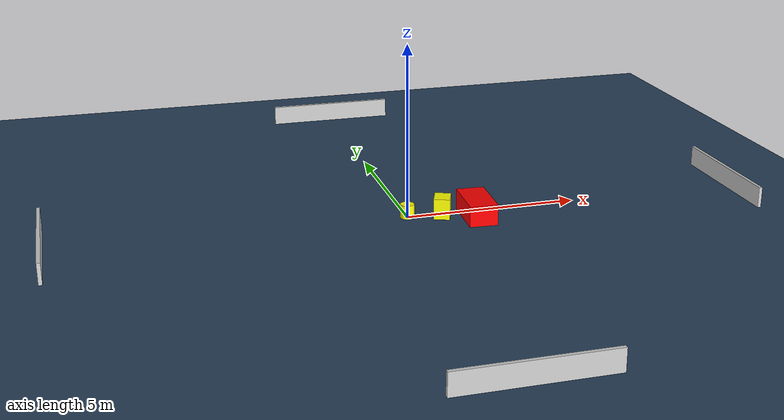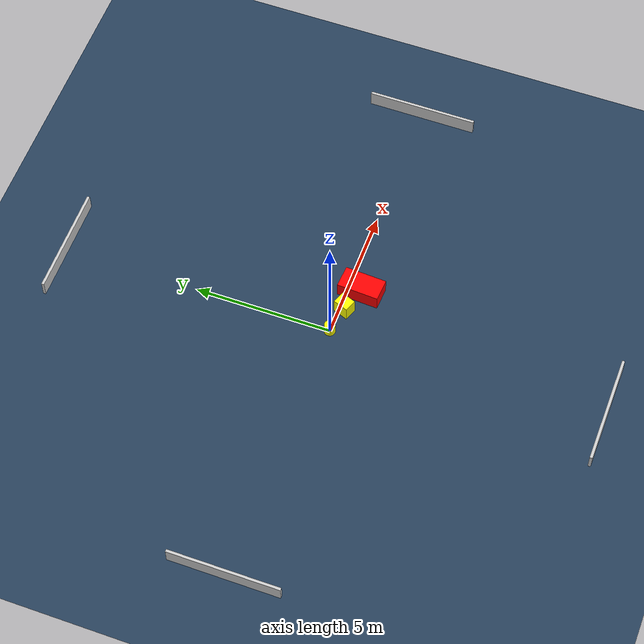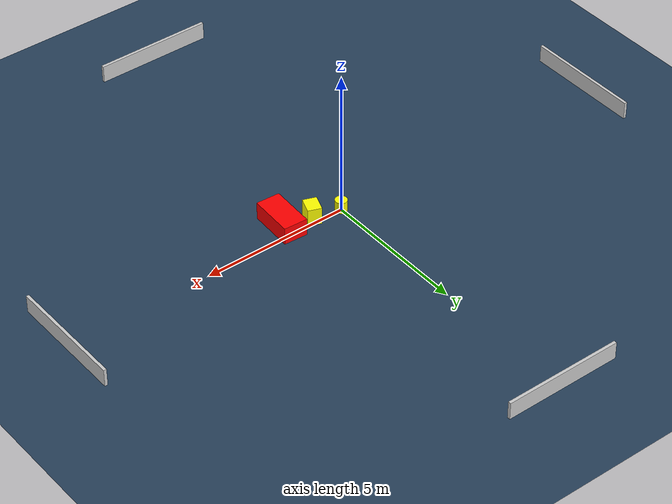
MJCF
<?xml version="1.0" ?>
<mujoco model="generated_environment">
  <option timestep="0.01" integrator="RK4" cone="elliptic"/>
  <default>
    <geom density="1"/>
  </default>
  <asset>
    <texture builtin="gradient" height="3072" name="skybox" rgb1="0.3 0.5 0.7" rgb2="0 0 0" type="skybox" width="512"/>
    <texture builtin="checker" height="300" name="groundplane" rgb1="0.2 0.3 0.4" rgb2="0.1 0.2 0.3" type="2d" width="300"/>
    <material name="groundplane" reflectance="0.2" texrepeat="5 5" texture="groundplane"/>
  </asset>
  <worldbody>
    <light dir="0 0 -1" directional="true" pos="0 0 1.5"/>
    <geom condim="3" friction="0.5 0.005 0.001" material="groundplane" name="floor" pos="0 0 0" size="0 0 0.05" type="plane"/>
    <body name="walls">
      <geom name="wall_1" condim="4" pos="-10.0 0.0 0.3" rgba="0.800000011920929 0.800000011920929 0.800000011920929 1.0" size="0.05 2.0 0.3" type="box"/>
      <geom name="wall_2" condim="4" pos="10.0 0.0 0.3" rgba="0.800000011920929 0.800000011920929 0.800000011920929 1.0" size="0.05 2.0 0.3" type="box"/>
      <geom name="wall_3" condim="4" pos="0.0 -10.0 0.3" rgba="0.800000011920929 0.800000011920929 0.800000011920929 1.0" size="2.0 0.05 0.3" type="box"/>
      <geom name="wall_4" condim="4" pos="0.0 10.0 0.3" rgba="0.800000011920929 0.800000011920929 0.800000011920929 1.0" size="2.0 0.05 0.3" type="box"/>
    </body>
    <body name="robot">
      <joint name="joint_x" type="slide" pos="0 0 0" axis="1 0 0"/>
      <joint name="joint_y" type="slide" pos="0 0 0" axis="0 1 0"/>
      <geom name="robot" type="cylinder" pos="0.0 0.0 0.2" size="0.2 0.2 0.0" mass="5.0" friction="1.0 0.005 0.0001" condim="4" rgba="1.0 1.0 0.0 1.0"/>
    </body>
    <body name="obstacle_1_movable">
      <geom name="obstacle_1_movable" condim="4" pos="0.974077053365259 -0.19035417427607568 0.3" euler="0 0 339.1725803234509" friction="0.0 0.005 0.001" rgba="1.0 1.0 0.0 1.0" size="0.22982933528458768 0.28121022882720187 0.3" type="box" mass="0.1"/>
      <joint type="free"/>
    </body>
    <body name="obstacle_2_static">
      <geom name="obstacle_2_static" condim="4" pos="1.8994997991762657 -0.49682124383859017 0.3" euler="0 0 266.92839014613946" friction="0.0 0.005 0.001" rgba="1.0 0.0 0.0 1.0" size="0.754903085431601 0.4042244848078682 0.3" type="box"/>
    </body>
  </worldbody>
  <actuator>
    <motor name="actuator_x" joint="joint_x" gear="1" ctrlrange="-1 1"/>
    <motor name="actuator_y" joint="joint_y" gear="1" ctrlrange="-1 1"/>
  </actuator>
</mujoco>
